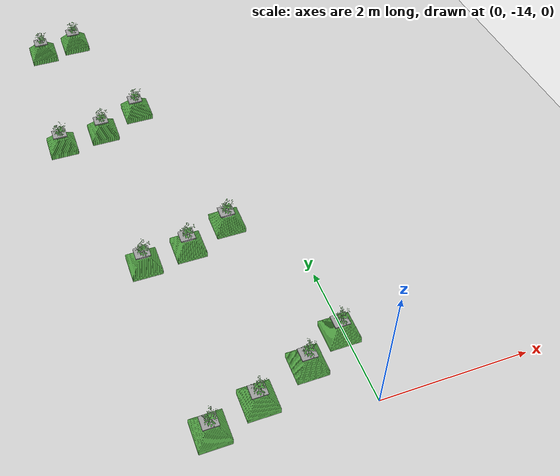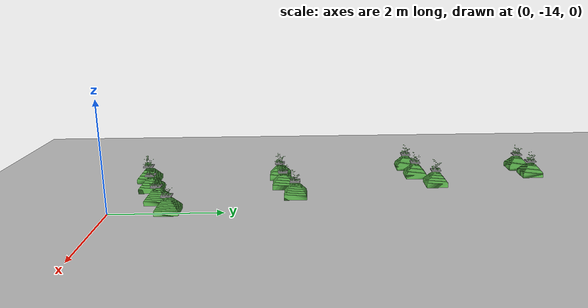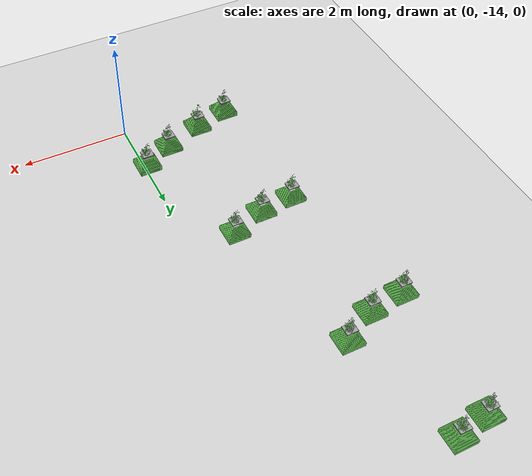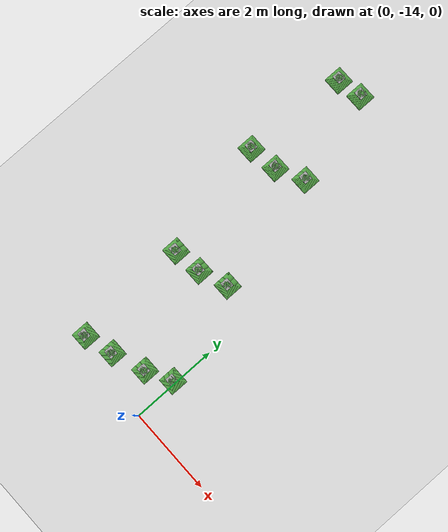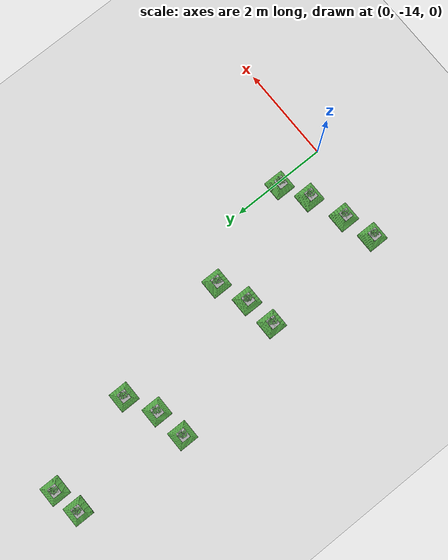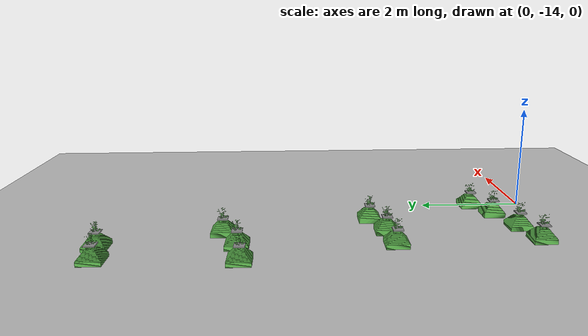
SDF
<sdf version="1.6">
 <world name="default">
  <model name="ground_plane">
   <static>1</static>
   <link name="link">
    <collision name="collision">
     <geometry><plane><normal>0 0 1</normal><size>100 100</size></plane></geometry>
     <surface><friction><ode><mu>100</mu><mu2>50</mu2></ode></friction></surface>
    </collision>
    <visual name="visual">
     <cast_shadows>0</cast_shadows>
     <geometry><plane><normal>0 0 1</normal><size>100 100</size></plane></geometry>
     <material>
      <script><uri>file://media/materials/scripts/gazebo.material</uri><name>Gazebo/Grey</name></script>
     </material>
    </visual>
   </link>
  </model>
  <model name="plant_31">
   <link name="link_0">
    <inertial>
     <mass>1</mass>
     <inertia>
      <ixx>0.0134051</ixx>
      <ixy>0</ixy>
      <ixz>0</ixz>
      <iyy>0.0134051</iyy>
      <iyz>0</iyz>
      <izz>0.0254102</izz>
     </inertia>
    </inertial>
    <gravity>0</gravity>
    <visual name="visual">
     <geometry><mesh><uri>model://square_pot/pot.stl</uri><scale>0.033 0.033 0.02</scale></mesh></geometry>
     <material>
      <lighting>1</lighting>
      <script><uri>file://media/materials/scripts/gazebo.material</uri><name>Gazebo/Grass</name></script>
      <ambient>0.3 0.3 0.3 1</ambient>
      <diffuse>0.7 0.7 0.7 1</diffuse>
      <specular>0.01 0.01 0.01 1</specular>
      <emissive>0 0 0 1</emissive>
      <shader type="vertex"><normal_map>__default__</normal_map></shader>
     </material>
    </visual>
    <collision name="collision">
     <pose>0 0 0.25 0 -0 0</pose>
     <geometry><box><size>0.4 0.4 0.4</size></box></geometry>
     <surface>
      <friction>
       <ode><mu>1</mu><mu2>1</mu2><fdir1>0 0 0</fdir1><slip1>0</slip1><slip2>0</slip2></ode>
       <torsional>
        <coefficient>1</coefficient>
        <patch_radius>0</patch_radius>
        <surface_radius>0</surface_radius>
        <use_patch_radius>1</use_patch_radius>
        <ode><slip>0</slip></ode>
       </torsional>
      </friction>
      <bounce><restitution_coefficient>0</restitution_coefficient><threshold>1e+06</threshold></bounce>
      <contact>
       <collide_without_contact>1</collide_without_contact>
       <collide_without_contact_bitmask>1</collide_without_contact_bitmask>
       <collide_bitmask>1</collide_bitmask>
       <ode>
        <soft_cfm>0</soft_cfm>
        <soft_erp>0.2</soft_erp>
        <kp>1e+13</kp>
        <kd>1</kd>
        <max_vel>0.01</max_vel>
        <min_depth>0</min_depth>
       </ode>
       <bullet>
        <split_impulse>1</split_impulse>
        <split_impulse_penetration_threshold>-0.01</split_impulse_penetration_threshold>
        <soft_cfm>0</soft_cfm>
        <soft_erp>0.2</soft_erp>
        <kp>1e+13</kp>
        <kd>1</kd>
       </bullet>
      </contact>
     </surface>
    </collision>
   </link>
   <link name="link_0_0">
    <pose>-0.011441 -0.008338 0.308474 0 -0 0</pose>
    <inertial>
     <mass>0.000736153</mass>
     <inertia>
      <ixx>2.11165e-06</ixx>
      <ixy>0</ixy>
      <ixz>0</ixz>
      <iyy>2.64382e-06</iyy>
      <iyz>0</iyz>
      <izz>4.70976e-06</izz>
     </inertia>
    </inertial>
    <visual name="visual">
     <geometry><box><size>0.206678 0.18452 0.019291</size></box></geometry>
     <material>
      <lighting>1</lighting>
      <script><uri>file://media/materials/scripts/gazebo.material</uri><name>Gazebo/Grey</name></script>
      <ambient>0.3 0.3 0.3 1</ambient>
      <diffuse>0.7 0.7 0.7 1</diffuse>
      <specular>0.01 0.01 0.01 1</specular>
      <emissive>0 0 0 1</emissive>
     </material>
    </visual>
    <collision name="collision">
     <geometry><box><size>0.206678 0.18452 0.019291</size></box></geometry>
     <surface>
      <friction>
       <ode><mu>1</mu><mu2>1</mu2><fdir1>0 0 0</fdir1><slip1>0</slip1><slip2>0</slip2></ode>
       <torsional>
        <coefficient>1</coefficient>
        <patch_radius>0</patch_radius>
        <surface_radius>0</surface_radius>
        <use_patch_radius>1</use_patch_radius>
        <ode><slip>0</slip></ode>
       </torsional>
      </friction>
      <bounce><restitution_coefficient>0</restitution_coefficient><threshold>1e+06</threshold></bounce>
      <contact>
       <collide_without_contact>0</collide_without_contact>
       <collide_without_contact_bitmask>1</collide_without_contact_bitmask>
       <collide_bitmask>1</collide_bitmask>
       <ode>
        <soft_cfm>0</soft_cfm>
        <soft_erp>0.2</soft_erp>
        <kp>1e+13</kp>
        <kd>1</kd>
        <max_vel>0.01</max_vel>
        <min_depth>0</min_depth>
       </ode>
       <bullet>
        <split_impulse>1</split_impulse>
        <split_impulse_penetration_threshold>-0.01</split_impulse_penetration_threshold>
        <soft_cfm>0</soft_cfm>
        <soft_erp>0.2</soft_erp>
        <kp>1e+13</kp>
        <kd>1</kd>
       </bullet>
      </contact>
     </surface>
    </collision>
   </link>
   <static>1</static>
   <pose>-2.54854 -6.01059 0 0 -0 0</pose>
  </model>
  <model name="plant_32">
   <link name="link_0">
    <inertial>
     <mass>1</mass>
     <inertia>
      <ixx>0.0134051</ixx>
      <ixy>0</ixy>
      <ixz>0</ixz>
      <iyy>0.0134051</iyy>
      <iyz>0</iyz>
      <izz>0.0254102</izz>
     </inertia>
    </inertial>
    <gravity>0</gravity>
    <visual name="visual">
     <geometry><mesh><uri>model://square_pot/pot.stl</uri><scale>0.033 0.033 0.02</scale></mesh></geometry>
     <material>
      <lighting>1</lighting>
      <script><uri>file://media/materials/scripts/gazebo.material</uri><name>Gazebo/Grass</name></script>
      <ambient>0.3 0.3 0.3 1</ambient>
      <diffuse>0.7 0.7 0.7 1</diffuse>
      <specular>0.01 0.01 0.01 1</specular>
      <emissive>0 0 0 1</emissive>
      <shader type="vertex"><normal_map>__default__</normal_map></shader>
     </material>
    </visual>
    <collision name="collision">
     <pose>0 0 0.25 0 -0 0</pose>
     <geometry><box><size>0.4 0.4 0.4</size></box></geometry>
     <surface>
      <friction>
       <ode><mu>1</mu><mu2>1</mu2><fdir1>0 0 0</fdir1><slip1>0</slip1><slip2>0</slip2></ode>
       <torsional>
        <coefficient>1</coefficient>
        <patch_radius>0</patch_radius>
        <surface_radius>0</surface_radius>
        <use_patch_radius>1</use_patch_radius>
        <ode><slip>0</slip></ode>
       </torsional>
      </friction>
      <bounce><restitution_coefficient>0</restitution_coefficient><threshold>1e+06</threshold></bounce>
      <contact>
       <collide_without_contact>1</collide_without_contact>
       <collide_without_contact_bitmask>1</collide_without_contact_bitmask>
       <collide_bitmask>1</collide_bitmask>
       <ode>
        <soft_cfm>0</soft_cfm>
        <soft_erp>0.2</soft_erp>
        <kp>1e+13</kp>
        <kd>1</kd>
        <max_vel>0.01</max_vel>
        <min_depth>0</min_depth>
       </ode>
       <bullet>
        <split_impulse>1</split_impulse>
        <split_impulse_penetration_threshold>-0.01</split_impulse_penetration_threshold>
        <soft_cfm>0</soft_cfm>
        <soft_erp>0.2</soft_erp>
        <kp>1e+13</kp>
        <kd>1</kd>
       </bullet>
      </contact>
     </surface>
    </collision>
   </link>
   <link name="link_0_0">
    <pose>-0.011441 -0.008338 0.308474 0 -0 0</pose>
    <inertial>
     <mass>0.000736153</mass>
     <inertia>
      <ixx>2.11165e-06</ixx>
      <ixy>0</ixy>
      <ixz>0</ixz>
      <iyy>2.64382e-06</iyy>
      <iyz>0</iyz>
      <izz>4.70976e-06</izz>
     </inertia>
    </inertial>
    <visual name="visual">
     <geometry><box><size>0.206678 0.18452 0.019291</size></box></geometry>
     <material>
      <lighting>1</lighting>
      <script><uri>file://media/materials/scripts/gazebo.material</uri><name>Gazebo/Grey</name></script>
      <ambient>0.3 0.3 0.3 1</ambient>
      <diffuse>0.7 0.7 0.7 1</diffuse>
      <specular>0.01 0.01 0.01 1</specular>
      <emissive>0 0 0 1</emissive>
     </material>
    </visual>
    <collision name="collision">
     <geometry><box><size>0.206678 0.18452 0.019291</size></box></geometry>
     <surface>
      <friction>
       <ode><mu>1</mu><mu2>1</mu2><fdir1>0 0 0</fdir1><slip1>0</slip1><slip2>0</slip2></ode>
       <torsional>
        <coefficient>1</coefficient>
        <patch_radius>0</patch_radius>
        <surface_radius>0</surface_radius>
        <use_patch_radius>1</use_patch_radius>
        <ode><slip>0</slip></ode>
       </torsional>
      </friction>
      <bounce><restitution_coefficient>0</restitution_coefficient><threshold>1e+06</threshold></bounce>
      <contact>
       <collide_without_contact>0</collide_without_contact>
       <collide_without_contact_bitmask>1</collide_without_contact_bitmask>
       <collide_bitmask>1</collide_bitmask>
       <ode>
        <soft_cfm>0</soft_cfm>
        <soft_erp>0.2</soft_erp>
        <kp>1e+13</kp>
        <kd>1</kd>
        <max_vel>0.01</max_vel>
        <min_depth>0</min_depth>
       </ode>
       <bullet>
        <split_impulse>1</split_impulse>
        <split_impulse_penetration_threshold>-0.01</split_impulse_penetration_threshold>
        <soft_cfm>0</soft_cfm>
        <soft_erp>0.2</soft_erp>
        <kp>1e+13</kp>
        <kd>1</kd>
       </bullet>
      </contact>
     </surface>
    </collision>
   </link>
   <static>1</static>
   <pose>-1.97889 -5.89957 0 0 -0 0</pose>
  </model>
  <model name="plant_35">
   <link name="link_0">
    <inertial>
     <mass>1</mass>
     <inertia>
      <ixx>0.0134051</ixx>
      <ixy>0</ixy>
      <ixz>0</ixz>
      <iyy>0.0134051</iyy>
      <iyz>0</iyz>
      <izz>0.0254102</izz>
     </inertia>
    </inertial>
    <gravity>0</gravity>
    <visual name="visual">
     <geometry><mesh><uri>model://square_pot/pot.stl</uri><scale>0.033 0.033 0.02</scale></mesh></geometry>
     <material>
      <lighting>1</lighting>
      <script><uri>file://media/materials/scripts/gazebo.material</uri><name>Gazebo/Grass</name></script>
      <ambient>0.3 0.3 0.3 1</ambient>
      <diffuse>0.7 0.7 0.7 1</diffuse>
      <specular>0.01 0.01 0.01 1</specular>
      <emissive>0 0 0 1</emissive>
      <shader type="vertex"><normal_map>__default__</normal_map></shader>
     </material>
    </visual>
    <collision name="collision">
     <pose>0 0 0.25 0 -0 0</pose>
     <geometry><box><size>0.4 0.4 0.4</size></box></geometry>
     <surface>
      <friction>
       <ode><mu>1</mu><mu2>1</mu2><fdir1>0 0 0</fdir1><slip1>0</slip1><slip2>0</slip2></ode>
       <torsional>
        <coefficient>1</coefficient>
        <patch_radius>0</patch_radius>
        <surface_radius>0</surface_radius>
        <use_patch_radius>1</use_patch_radius>
        <ode><slip>0</slip></ode>
       </torsional>
      </friction>
      <bounce><restitution_coefficient>0</restitution_coefficient><threshold>1e+06</threshold></bounce>
      <contact>
       <collide_without_contact>1</collide_without_contact>
       <collide_without_contact_bitmask>1</collide_without_contact_bitmask>
       <collide_bitmask>1</collide_bitmask>
       <ode>
        <soft_cfm>0</soft_cfm>
        <soft_erp>0.2</soft_erp>
        <kp>1e+13</kp>
        <kd>1</kd>
        <max_vel>0.01</max_vel>
        <min_depth>0</min_depth>
       </ode>
       <bullet>
        <split_impulse>1</split_impulse>
        <split_impulse_penetration_threshold>-0.01</split_impulse_penetration_threshold>
        <soft_cfm>0</soft_cfm>
        <soft_erp>0.2</soft_erp>
        <kp>1e+13</kp>
        <kd>1</kd>
       </bullet>
      </contact>
     </surface>
    </collision>
   </link>
   <link name="link_0_0">
    <pose>-0.011441 -0.008338 0.308474 0 -0 0</pose>
    <inertial>
     <mass>0.000736153</mass>
     <inertia>
      <ixx>2.11165e-06</ixx>
      <ixy>0</ixy>
      <ixz>0</ixz>
      <iyy>2.64382e-06</iyy>
      <iyz>0</iyz>
      <izz>4.70976e-06</izz>
     </inertia>
    </inertial>
    <visual name="visual">
     <geometry><box><size>0.206678 0.18452 0.019291</size></box></geometry>
     <material>
      <lighting>1</lighting>
      <script><uri>file://media/materials/scripts/gazebo.material</uri><name>Gazebo/Grey</name></script>
      <ambient>0.3 0.3 0.3 1</ambient>
      <diffuse>0.7 0.7 0.7 1</diffuse>
      <specular>0.01 0.01 0.01 1</specular>
      <emissive>0 0 0 1</emissive>
     </material>
    </visual>
    <collision name="collision">
     <geometry><box><size>0.206678 0.18452 0.019291</size></box></geometry>
     <surface>
      <friction>
       <ode><mu>1</mu><mu2>1</mu2><fdir1>0 0 0</fdir1><slip1>0</slip1><slip2>0</slip2></ode>
       <torsional>
        <coefficient>1</coefficient>
        <patch_radius>0</patch_radius>
        <surface_radius>0</surface_radius>
        <use_patch_radius>1</use_patch_radius>
        <ode><slip>0</slip></ode>
       </torsional>
      </friction>
      <bounce><restitution_coefficient>0</restitution_coefficient><threshold>1e+06</threshold></bounce>
      <contact>
       <collide_without_contact>0</collide_without_contact>
       <collide_without_contact_bitmask>1</collide_without_contact_bitmask>
       <collide_bitmask>1</collide_bitmask>
       <ode>
        <soft_cfm>0</soft_cfm>
        <soft_erp>0.2</soft_erp>
        <kp>1e+13</kp>
        <kd>1</kd>
        <max_vel>0.01</max_vel>
        <min_depth>0</min_depth>
       </ode>
       <bullet>
        <split_impulse>1</split_impulse>
        <split_impulse_penetration_threshold>-0.01</split_impulse_penetration_threshold>
        <soft_cfm>0</soft_cfm>
        <soft_erp>0.2</soft_erp>
        <kp>1e+13</kp>
        <kd>1</kd>
       </bullet>
      </contact>
     </surface>
    </collision>
   </link>
   <static>1</static>
   <pose>-2.68524 -8.4179 0 0 -0 0</pose>
  </model>
  <model name="plant_36">
   <link name="link_0">
    <inertial>
     <mass>1</mass>
     <inertia>
      <ixx>0.0134051</ixx>
      <ixy>0</ixy>
      <ixz>0</ixz>
      <iyy>0.0134051</iyy>
      <iyz>0</iyz>
      <izz>0.0254102</izz>
     </inertia>
    </inertial>
    <gravity>0</gravity>
    <visual name="visual">
     <geometry><mesh><uri>model://square_pot/pot.stl</uri><scale>0.033 0.033 0.02</scale></mesh></geometry>
     <material>
      <lighting>1</lighting>
      <script><uri>file://media/materials/scripts/gazebo.material</uri><name>Gazebo/Grass</name></script>
      <ambient>0.3 0.3 0.3 1</ambient>
      <diffuse>0.7 0.7 0.7 1</diffuse>
      <specular>0.01 0.01 0.01 1</specular>
      <emissive>0 0 0 1</emissive>
      <shader type="vertex"><normal_map>__default__</normal_map></shader>
     </material>
    </visual>
    <collision name="collision">
     <pose>0 0 0.25 0 -0 0</pose>
     <geometry><box><size>0.4 0.4 0.4</size></box></geometry>
     <surface>
      <friction>
       <ode><mu>1</mu><mu2>1</mu2><fdir1>0 0 0</fdir1><slip1>0</slip1><slip2>0</slip2></ode>
       <torsional>
        <coefficient>1</coefficient>
        <patch_radius>0</patch_radius>
        <surface_radius>0</surface_radius>
        <use_patch_radius>1</use_patch_radius>
        <ode><slip>0</slip></ode>
       </torsional>
      </friction>
      <bounce><restitution_coefficient>0</restitution_coefficient><threshold>1e+06</threshold></bounce>
      <contact>
       <collide_without_contact>1</collide_without_contact>
       <collide_without_contact_bitmask>1</collide_without_contact_bitmask>
       <collide_bitmask>1</collide_bitmask>
       <ode>
        <soft_cfm>0</soft_cfm>
        <soft_erp>0.2</soft_erp>
        <kp>1e+13</kp>
        <kd>1</kd>
        <max_vel>0.01</max_vel>
        <min_depth>0</min_depth>
       </ode>
       <bullet>
        <split_impulse>1</split_impulse>
        <split_impulse_penetration_threshold>-0.01</split_impulse_penetration_threshold>
        <soft_cfm>0</soft_cfm>
        <soft_erp>0.2</soft_erp>
        <kp>1e+13</kp>
        <kd>1</kd>
       </bullet>
      </contact>
     </surface>
    </collision>
   </link>
   <link name="link_0_0">
    <pose>-0.011441 -0.008338 0.308474 0 -0 0</pose>
    <inertial>
     <mass>0.000736153</mass>
     <inertia>
      <ixx>2.11165e-06</ixx>
      <ixy>0</ixy>
      <ixz>0</ixz>
      <iyy>2.64382e-06</iyy>
      <iyz>0</iyz>
      <izz>4.70976e-06</izz>
     </inertia>
    </inertial>
    <visual name="visual">
     <geometry><box><size>0.206678 0.18452 0.019291</size></box></geometry>
     <material>
      <lighting>1</lighting>
      <script><uri>file://media/materials/scripts/gazebo.material</uri><name>Gazebo/Grey</name></script>
      <ambient>0.3 0.3 0.3 1</ambient>
      <diffuse>0.7 0.7 0.7 1</diffuse>
      <specular>0.01 0.01 0.01 1</specular>
      <emissive>0 0 0 1</emissive>
     </material>
    </visual>
    <collision name="collision">
     <geometry><box><size>0.206678 0.18452 0.019291</size></box></geometry>
     <surface>
      <friction>
       <ode><mu>1</mu><mu2>1</mu2><fdir1>0 0 0</fdir1><slip1>0</slip1><slip2>0</slip2></ode>
       <torsional>
        <coefficient>1</coefficient>
        <patch_radius>0</patch_radius>
        <surface_radius>0</surface_radius>
        <use_patch_radius>1</use_patch_radius>
        <ode><slip>0</slip></ode>
       </torsional>
      </friction>
      <bounce><restitution_coefficient>0</restitution_coefficient><threshold>1e+06</threshold></bounce>
      <contact>
       <collide_without_contact>0</collide_without_contact>
       <collide_without_contact_bitmask>1</collide_without_contact_bitmask>
       <collide_bitmask>1</collide_bitmask>
       <ode>
        <soft_cfm>0</soft_cfm>
        <soft_erp>0.2</soft_erp>
        <kp>1e+13</kp>
        <kd>1</kd>
        <max_vel>0.01</max_vel>
        <min_depth>0</min_depth>
       </ode>
       <bullet>
        <split_impulse>1</split_impulse>
        <split_impulse_penetration_threshold>-0.01</split_impulse_penetration_threshold>
        <soft_cfm>0</soft_cfm>
        <soft_erp>0.2</soft_erp>
        <kp>1e+13</kp>
        <kd>1</kd>
       </bullet>
      </contact>
     </surface>
    </collision>
   </link>
   <static>1</static>
   <pose>-2.02553 -8.31826 0 0 -0 0</pose>
  </model>
  <model name="plant_37">
   <link name="link_0">
    <inertial>
     <mass>1</mass>
     <inertia>
      <ixx>0.0134051</ixx>
      <ixy>0</ixy>
      <ixz>0</ixz>
      <iyy>0.0134051</iyy>
      <iyz>0</iyz>
      <izz>0.0254102</izz>
     </inertia>
    </inertial>
    <gravity>0</gravity>
    <visual name="visual">
     <geometry><mesh><uri>model://square_pot/pot.stl</uri><scale>0.033 0.033 0.02</scale></mesh></geometry>
     <material>
      <lighting>1</lighting>
      <script><uri>file://media/materials/scripts/gazebo.material</uri><name>Gazebo/Grass</name></script>
      <ambient>0.3 0.3 0.3 1</ambient>
      <diffuse>0.7 0.7 0.7 1</diffuse>
      <specular>0.01 0.01 0.01 1</specular>
      <emissive>0 0 0 1</emissive>
      <shader type="vertex"><normal_map>__default__</normal_map></shader>
     </material>
    </visual>
    <collision name="collision">
     <pose>0 0 0.25 0 -0 0</pose>
     <geometry><box><size>0.4 0.4 0.4</size></box></geometry>
     <surface>
      <friction>
       <ode><mu>1</mu><mu2>1</mu2><fdir1>0 0 0</fdir1><slip1>0</slip1><slip2>0</slip2></ode>
       <torsional>
        <coefficient>1</coefficient>
        <patch_radius>0</patch_radius>
        <surface_radius>0</surface_radius>
        <use_patch_radius>1</use_patch_radius>
        <ode><slip>0</slip></ode>
       </torsional>
      </friction>
      <bounce><restitution_coefficient>0</restitution_coefficient><threshold>1e+06</threshold></bounce>
      <contact>
       <collide_without_contact>1</collide_without_contact>
       <collide_without_contact_bitmask>1</collide_without_contact_bitmask>
       <collide_bitmask>1</collide_bitmask>
       <ode>
        <soft_cfm>0</soft_cfm>
        <soft_erp>0.2</soft_erp>
        <kp>1e+13</kp>
        <kd>1</kd>
        <max_vel>0.01</max_vel>
        <min_depth>0</min_depth>
       </ode>
       <bullet>
        <split_impulse>1</split_impulse>
        <split_impulse_penetration_threshold>-0.01</split_impulse_penetration_threshold>
        <soft_cfm>0</soft_cfm>
        <soft_erp>0.2</soft_erp>
        <kp>1e+13</kp>
        <kd>1</kd>
       </bullet>
      </contact>
     </surface>
    </collision>
   </link>
   <link name="link_0_0">
    <pose>-0.011441 -0.008338 0.308474 0 -0 0</pose>
    <inertial>
     <mass>0.000736153</mass>
     <inertia>
      <ixx>2.11165e-06</ixx>
      <ixy>0</ixy>
      <ixz>0</ixz>
      <iyy>2.64382e-06</iyy>
      <iyz>0</iyz>
      <izz>4.70976e-06</izz>
     </inertia>
    </inertial>
    <visual name="visual">
     <geometry><box><size>0.206678 0.18452 0.019291</size></box></geometry>
     <material>
      <lighting>1</lighting>
      <script><uri>file://media/materials/scripts/gazebo.material</uri><name>Gazebo/Grey</name></script>
      <ambient>0.3 0.3 0.3 1</ambient>
      <diffuse>0.7 0.7 0.7 1</diffuse>
      <specular>0.01 0.01 0.01 1</specular>
      <emissive>0 0 0 1</emissive>
     </material>
    </visual>
    <collision name="collision">
     <geometry><box><size>0.206678 0.18452 0.019291</size></box></geometry>
     <surface>
      <friction>
       <ode><mu>1</mu><mu2>1</mu2><fdir1>0 0 0</fdir1><slip1>0</slip1><slip2>0</slip2></ode>
       <torsional>
        <coefficient>1</coefficient>
        <patch_radius>0</patch_radius>
        <surface_radius>0</surface_radius>
        <use_patch_radius>1</use_patch_radius>
        <ode><slip>0</slip></ode>
       </torsional>
      </friction>
      <bounce><restitution_coefficient>0</restitution_coefficient><threshold>1e+06</threshold></bounce>
      <contact>
       <collide_without_contact>0</collide_without_contact>
       <collide_without_contact_bitmask>1</collide_without_contact_bitmask>
       <collide_bitmask>1</collide_bitmask>
       <ode>
        <soft_cfm>0</soft_cfm>
        <soft_erp>0.2</soft_erp>
        <kp>1e+13</kp>
        <kd>1</kd>
        <max_vel>0.01</max_vel>
        <min_depth>0</min_depth>
       </ode>
       <bullet>
        <split_impulse>1</split_impulse>
        <split_impulse_penetration_threshold>-0.01</split_impulse_penetration_threshold>
        <soft_cfm>0</soft_cfm>
        <soft_erp>0.2</soft_erp>
        <kp>1e+13</kp>
        <kd>1</kd>
       </bullet>
      </contact>
     </surface>
    </collision>
   </link>
   <static>1</static>
   <pose>-1.40881 -8.00581 0 0 -0 0</pose>
  </model>
  <model name="plant_43">
   <link name="link_0">
    <inertial>
     <mass>1</mass>
     <inertia>
      <ixx>0.0134051</ixx>
      <ixy>0</ixy>
      <ixz>0</ixz>
      <iyy>0.0134051</iyy>
      <iyz>0</iyz>
      <izz>0.0254102</izz>
     </inertia>
    </inertial>
    <gravity>0</gravity>
    <visual name="visual">
     <geometry><mesh><uri>model://square_pot/pot.stl</uri><scale>0.033 0.033 0.02</scale></mesh></geometry>
     <material>
      <lighting>1</lighting>
      <script><uri>file://media/materials/scripts/gazebo.material</uri><name>Gazebo/Grass</name></script>
      <ambient>0.3 0.3 0.3 1</ambient>
      <diffuse>0.7 0.7 0.7 1</diffuse>
      <specular>0.01 0.01 0.01 1</specular>
      <emissive>0 0 0 1</emissive>
      <shader type="vertex"><normal_map>__default__</normal_map></shader>
     </material>
    </visual>
    <collision name="collision">
     <pose>0 0 0.25 0 -0 0</pose>
     <geometry><box><size>0.4 0.4 0.4</size></box></geometry>
     <surface>
      <friction>
       <ode><mu>1</mu><mu2>1</mu2><fdir1>0 0 0</fdir1><slip1>0</slip1><slip2>0</slip2></ode>
       <torsional>
        <coefficient>1</coefficient>
        <patch_radius>0</patch_radius>
        <surface_radius>0</surface_radius>
        <use_patch_radius>1</use_patch_radius>
        <ode><slip>0</slip></ode>
       </torsional>
      </friction>
      <bounce><restitution_coefficient>0</restitution_coefficient><threshold>1e+06</threshold></bounce>
      <contact>
       <collide_without_contact>1</collide_without_contact>
       <collide_without_contact_bitmask>1</collide_without_contact_bitmask>
       <collide_bitmask>1</collide_bitmask>
       <ode>
        <soft_cfm>0</soft_cfm>
        <soft_erp>0.2</soft_erp>
        <kp>1e+13</kp>
        <kd>1</kd>
        <max_vel>0.01</max_vel>
        <min_depth>0</min_depth>
       </ode>
       <bullet>
        <split_impulse>1</split_impulse>
        <split_impulse_penetration_threshold>-0.01</split_impulse_penetration_threshold>
        <soft_cfm>0</soft_cfm>
        <soft_erp>0.2</soft_erp>
        <kp>1e+13</kp>
        <kd>1</kd>
       </bullet>
      </contact>
     </surface>
    </collision>
   </link>
   <link name="link_0_0">
    <pose>-0.011441 -0.008338 0.308474 0 -0 0</pose>
    <inertial>
     <mass>0.000736153</mass>
     <inertia>
      <ixx>2.11165e-06</ixx>
      <ixy>0</ixy>
      <ixz>0</ixz>
      <iyy>2.64382e-06</iyy>
      <iyz>0</iyz>
      <izz>4.70976e-06</izz>
     </inertia>
    </inertial>
    <visual name="visual">
     <geometry><box><size>0.206678 0.18452 0.019291</size></box></geometry>
     <material>
      <lighting>1</lighting>
      <script><uri>file://media/materials/scripts/gazebo.material</uri><name>Gazebo/Grey</name></script>
      <ambient>0.3 0.3 0.3 1</ambient>
      <diffuse>0.7 0.7 0.7 1</diffuse>
      <specular>0.01 0.01 0.01 1</specular>
      <emissive>0 0 0 1</emissive>
     </material>
    </visual>
    <collision name="collision">
     <geometry><box><size>0.206678 0.18452 0.019291</size></box></geometry>
     <surface>
      <friction>
       <ode><mu>1</mu><mu2>1</mu2><fdir1>0 0 0</fdir1><slip1>0</slip1><slip2>0</slip2></ode>
       <torsional>
        <coefficient>1</coefficient>
        <patch_radius>0</patch_radius>
        <surface_radius>0</surface_radius>
        <use_patch_radius>1</use_patch_radius>
        <ode><slip>0</slip></ode>
       </torsional>
      </friction>
      <bounce><restitution_coefficient>0</restitution_coefficient><threshold>1e+06</threshold></bounce>
      <contact>
       <collide_without_contact>0</collide_without_contact>
       <collide_without_contact_bitmask>1</collide_without_contact_bitmask>
       <collide_bitmask>1</collide_bitmask>
       <ode>
        <soft_cfm>0</soft_cfm>
        <soft_erp>0.2</soft_erp>
        <kp>1e+13</kp>
        <kd>1</kd>
        <max_vel>0.01</max_vel>
        <min_depth>0</min_depth>
       </ode>
       <bullet>
        <split_impulse>1</split_impulse>
        <split_impulse_penetration_threshold>-0.01</split_impulse_penetration_threshold>
        <soft_cfm>0</soft_cfm>
        <soft_erp>0.2</soft_erp>
        <kp>1e+13</kp>
        <kd>1</kd>
       </bullet>
      </contact>
     </surface>
    </collision>
   </link>
   <static>1</static>
   <pose>-2.00876 -13.7234 0 0 -0 0</pose>
  </model>
  <model name="plant_44">
   <link name="link_0">
    <inertial>
     <mass>1</mass>
     <inertia>
      <ixx>0.0134051</ixx>
      <ixy>0</ixy>
      <ixz>0</ixz>
      <iyy>0.0134051</iyy>
      <iyz>0</iyz>
      <izz>0.0254102</izz>
     </inertia>
    </inertial>
    <gravity>0</gravity>
    <visual name="visual">
     <geometry><mesh><uri>model://square_pot/pot.stl</uri><scale>0.033 0.033 0.02</scale></mesh></geometry>
     <material>
      <lighting>1</lighting>
      <script><uri>file://media/materials/scripts/gazebo.material</uri><name>Gazebo/Grass</name></script>
      <ambient>0.3 0.3 0.3 1</ambient>
      <diffuse>0.7 0.7 0.7 1</diffuse>
      <specular>0.01 0.01 0.01 1</specular>
      <emissive>0 0 0 1</emissive>
      <shader type="vertex"><normal_map>__default__</normal_map></shader>
     </material>
    </visual>
    <collision name="collision">
     <pose>0 0 0.25 0 -0 0</pose>
     <geometry><box><size>0.4 0.4 0.4</size></box></geometry>
     <surface>
      <friction>
       <ode><mu>1</mu><mu2>1</mu2><fdir1>0 0 0</fdir1><slip1>0</slip1><slip2>0</slip2></ode>
       <torsional>
        <coefficient>1</coefficient>
        <patch_radius>0</patch_radius>
        <surface_radius>0</surface_radius>
        <use_patch_radius>1</use_patch_radius>
        <ode><slip>0</slip></ode>
       </torsional>
      </friction>
      <bounce><restitution_coefficient>0</restitution_coefficient><threshold>1e+06</threshold></bounce>
      <contact>
       <collide_without_contact>1</collide_without_contact>
       <collide_without_contact_bitmask>1</collide_without_contact_bitmask>
       <collide_bitmask>1</collide_bitmask>
       <ode>
        <soft_cfm>0</soft_cfm>
        <soft_erp>0.2</soft_erp>
        <kp>1e+13</kp>
        <kd>1</kd>
        <max_vel>0.01</max_vel>
        <min_depth>0</min_depth>
       </ode>
       <bullet>
        <split_impulse>1</split_impulse>
        <split_impulse_penetration_threshold>-0.01</split_impulse_penetration_threshold>
        <soft_cfm>0</soft_cfm>
        <soft_erp>0.2</soft_erp>
        <kp>1e+13</kp>
        <kd>1</kd>
       </bullet>
      </contact>
     </surface>
    </collision>
   </link>
   <link name="link_0_0">
    <pose>-0.011441 -0.008338 0.308474 0 -0 0</pose>
    <inertial>
     <mass>0.000736153</mass>
     <inertia>
      <ixx>2.11165e-06</ixx>
      <ixy>0</ixy>
      <ixz>0</ixz>
      <iyy>2.64382e-06</iyy>
      <iyz>0</iyz>
      <izz>4.70976e-06</izz>
     </inertia>
    </inertial>
    <visual name="visual">
     <geometry><box><size>0.206678 0.18452 0.019291</size></box></geometry>
     <material>
      <lighting>1</lighting>
      <script><uri>file://media/materials/scripts/gazebo.material</uri><name>Gazebo/Grey</name></script>
      <ambient>0.3 0.3 0.3 1</ambient>
      <diffuse>0.7 0.7 0.7 1</diffuse>
      <specular>0.01 0.01 0.01 1</specular>
      <emissive>0 0 0 1</emissive>
     </material>
    </visual>
    <collision name="collision">
     <geometry><box><size>0.206678 0.18452 0.019291</size></box></geometry>
     <surface>
      <friction>
       <ode><mu>1</mu><mu2>1</mu2><fdir1>0 0 0</fdir1><slip1>0</slip1><slip2>0</slip2></ode>
       <torsional>
        <coefficient>1</coefficient>
        <patch_radius>0</patch_radius>
        <surface_radius>0</surface_radius>
        <use_patch_radius>1</use_patch_radius>
        <ode><slip>0</slip></ode>
       </torsional>
      </friction>
      <bounce><restitution_coefficient>0</restitution_coefficient><threshold>1e+06</threshold></bounce>
      <contact>
       <collide_without_contact>0</collide_without_contact>
       <collide_without_contact_bitmask>1</collide_without_contact_bitmask>
       <collide_bitmask>1</collide_bitmask>
       <ode>
        <soft_cfm>0</soft_cfm>
        <soft_erp>0.2</soft_erp>
        <kp>1e+13</kp>
        <kd>1</kd>
        <max_vel>0.01</max_vel>
        <min_depth>0</min_depth>
       </ode>
       <bullet>
        <split_impulse>1</split_impulse>
        <split_impulse_penetration_threshold>-0.01</split_impulse_penetration_threshold>
        <soft_cfm>0</soft_cfm>
        <soft_erp>0.2</soft_erp>
        <kp>1e+13</kp>
        <kd>1</kd>
       </bullet>
      </contact>
     </surface>
    </collision>
   </link>
   <static>1</static>
   <pose>-1.35663 -13.5413 0 0 -0 0</pose>
  </model>
  <model name="plant_45">
   <link name="link_0">
    <inertial>
     <mass>1</mass>
     <inertia>
      <ixx>0.0134051</ixx>
      <ixy>0</ixy>
      <ixz>0</ixz>
      <iyy>0.0134051</iyy>
      <iyz>0</iyz>
      <izz>0.0254102</izz>
     </inertia>
    </inertial>
    <gravity>0</gravity>
    <visual name="visual">
     <geometry><mesh><uri>model://square_pot/pot.stl</uri><scale>0.033 0.033 0.02</scale></mesh></geometry>
     <material>
      <lighting>1</lighting>
      <script><uri>file://media/materials/scripts/gazebo.material</uri><name>Gazebo/Grass</name></script>
      <ambient>0.3 0.3 0.3 1</ambient>
      <diffuse>0.7 0.7 0.7 1</diffuse>
      <specular>0.01 0.01 0.01 1</specular>
      <emissive>0 0 0 1</emissive>
      <shader type="vertex"><normal_map>__default__</normal_map></shader>
     </material>
    </visual>
    <collision name="collision">
     <pose>0 0 0.25 0 -0 0</pose>
     <geometry><box><size>0.4 0.4 0.4</size></box></geometry>
     <surface>
      <friction>
       <ode><mu>1</mu><mu2>1</mu2><fdir1>0 0 0</fdir1><slip1>0</slip1><slip2>0</slip2></ode>
       <torsional>
        <coefficient>1</coefficient>
        <patch_radius>0</patch_radius>
        <surface_radius>0</surface_radius>
        <use_patch_radius>1</use_patch_radius>
        <ode><slip>0</slip></ode>
       </torsional>
      </friction>
      <bounce><restitution_coefficient>0</restitution_coefficient><threshold>1e+06</threshold></bounce>
      <contact>
       <collide_without_contact>1</collide_without_contact>
       <collide_without_contact_bitmask>1</collide_without_contact_bitmask>
       <collide_bitmask>1</collide_bitmask>
       <ode>
        <soft_cfm>0</soft_cfm>
        <soft_erp>0.2</soft_erp>
        <kp>1e+13</kp>
        <kd>1</kd>
        <max_vel>0.01</max_vel>
        <min_depth>0</min_depth>
       </ode>
       <bullet>
        <split_impulse>1</split_impulse>
        <split_impulse_penetration_threshold>-0.01</split_impulse_penetration_threshold>
        <soft_cfm>0</soft_cfm>
        <soft_erp>0.2</soft_erp>
        <kp>1e+13</kp>
        <kd>1</kd>
       </bullet>
      </contact>
     </surface>
    </collision>
   </link>
   <link name="link_0_0">
    <pose>-0.011441 -0.008338 0.308474 0 -0 0</pose>
    <inertial>
     <mass>0.000736153</mass>
     <inertia>
      <ixx>2.11165e-06</ixx>
      <ixy>0</ixy>
      <ixz>0</ixz>
      <iyy>2.64382e-06</iyy>
      <iyz>0</iyz>
      <izz>4.70976e-06</izz>
     </inertia>
    </inertial>
    <visual name="visual">
     <geometry><box><size>0.206678 0.18452 0.019291</size></box></geometry>
     <material>
      <lighting>1</lighting>
      <script><uri>file://media/materials/scripts/gazebo.material</uri><name>Gazebo/Grey</name></script>
      <ambient>0.3 0.3 0.3 1</ambient>
      <diffuse>0.7 0.7 0.7 1</diffuse>
      <specular>0.01 0.01 0.01 1</specular>
      <emissive>0 0 0 1</emissive>
     </material>
    </visual>
    <collision name="collision">
     <geometry><box><size>0.206678 0.18452 0.019291</size></box></geometry>
     <surface>
      <friction>
       <ode><mu>1</mu><mu2>1</mu2><fdir1>0 0 0</fdir1><slip1>0</slip1><slip2>0</slip2></ode>
       <torsional>
        <coefficient>1</coefficient>
        <patch_radius>0</patch_radius>
        <surface_radius>0</surface_radius>
        <use_patch_radius>1</use_patch_radius>
        <ode><slip>0</slip></ode>
       </torsional>
      </friction>
      <bounce><restitution_coefficient>0</restitution_coefficient><threshold>1e+06</threshold></bounce>
      <contact>
       <collide_without_contact>0</collide_without_contact>
       <collide_without_contact_bitmask>1</collide_without_contact_bitmask>
       <collide_bitmask>1</collide_bitmask>
       <ode>
        <soft_cfm>0</soft_cfm>
        <soft_erp>0.2</soft_erp>
        <kp>1e+13</kp>
        <kd>1</kd>
        <max_vel>0.01</max_vel>
        <min_depth>0</min_depth>
       </ode>
       <bullet>
        <split_impulse>1</split_impulse>
        <split_impulse_penetration_threshold>-0.01</split_impulse_penetration_threshold>
        <soft_cfm>0</soft_cfm>
        <soft_erp>0.2</soft_erp>
        <kp>1e+13</kp>
        <kd>1</kd>
       </bullet>
      </contact>
     </surface>
    </collision>
   </link>
   <static>1</static>
   <pose>-0.623547 -13.2706 0 0 -0 0</pose>
  </model>
  <model name="plant_46">
   <link name="link_0">
    <inertial>
     <mass>1</mass>
     <inertia>
      <ixx>0.0134051</ixx>
      <ixy>0</ixy>
      <ixz>0</ixz>
      <iyy>0.0134051</iyy>
      <iyz>0</iyz>
      <izz>0.0254102</izz>
     </inertia>
    </inertial>
    <gravity>0</gravity>
    <visual name="visual">
     <geometry><mesh><uri>model://square_pot/pot.stl</uri><scale>0.033 0.033 0.02</scale></mesh></geometry>
     <material>
      <lighting>1</lighting>
      <script><uri>file://media/materials/scripts/gazebo.material</uri><name>Gazebo/Grass</name></script>
      <ambient>0.3 0.3 0.3 1</ambient>
      <diffuse>0.7 0.7 0.7 1</diffuse>
      <specular>0.01 0.01 0.01 1</specular>
      <emissive>0 0 0 1</emissive>
      <shader type="vertex"><normal_map>__default__</normal_map></shader>
     </material>
    </visual>
    <collision name="collision">
     <pose>0 0 0.25 0 -0 0</pose>
     <geometry><box><size>0.4 0.4 0.4</size></box></geometry>
     <surface>
      <friction>
       <ode><mu>1</mu><mu2>1</mu2><fdir1>0 0 0</fdir1><slip1>0</slip1><slip2>0</slip2></ode>
       <torsional>
        <coefficient>1</coefficient>
        <patch_radius>0</patch_radius>
        <surface_radius>0</surface_radius>
        <use_patch_radius>1</use_patch_radius>
        <ode><slip>0</slip></ode>
       </torsional>
      </friction>
      <bounce><restitution_coefficient>0</restitution_coefficient><threshold>1e+06</threshold></bounce>
      <contact>
       <collide_without_contact>1</collide_without_contact>
       <collide_without_contact_bitmask>1</collide_without_contact_bitmask>
       <collide_bitmask>1</collide_bitmask>
       <ode>
        <soft_cfm>0</soft_cfm>
        <soft_erp>0.2</soft_erp>
        <kp>1e+13</kp>
        <kd>1</kd>
        <max_vel>0.01</max_vel>
        <min_depth>0</min_depth>
       </ode>
       <bullet>
        <split_impulse>1</split_impulse>
        <split_impulse_penetration_threshold>-0.01</split_impulse_penetration_threshold>
        <soft_cfm>0</soft_cfm>
        <soft_erp>0.2</soft_erp>
        <kp>1e+13</kp>
        <kd>1</kd>
       </bullet>
      </contact>
     </surface>
    </collision>
   </link>
   <link name="link_0_0">
    <pose>-0.011441 -0.008338 0.308474 0 -0 0</pose>
    <inertial>
     <mass>0.000736153</mass>
     <inertia>
      <ixx>2.11165e-06</ixx>
      <ixy>0</ixy>
      <ixz>0</ixz>
      <iyy>2.64382e-06</iyy>
      <iyz>0</iyz>
      <izz>4.70976e-06</izz>
     </inertia>
    </inertial>
    <visual name="visual">
     <geometry><box><size>0.206678 0.18452 0.019291</size></box></geometry>
     <material>
      <lighting>1</lighting>
      <script><uri>file://media/materials/scripts/gazebo.material</uri><name>Gazebo/Grey</name></script>
      <ambient>0.3 0.3 0.3 1</ambient>
      <diffuse>0.7 0.7 0.7 1</diffuse>
      <specular>0.01 0.01 0.01 1</specular>
      <emissive>0 0 0 1</emissive>
     </material>
    </visual>
    <collision name="collision">
     <geometry><box><size>0.206678 0.18452 0.019291</size></box></geometry>
     <surface>
      <friction>
       <ode><mu>1</mu><mu2>1</mu2><fdir1>0 0 0</fdir1><slip1>0</slip1><slip2>0</slip2></ode>
       <torsional>
        <coefficient>1</coefficient>
        <patch_radius>0</patch_radius>
        <surface_radius>0</surface_radius>
        <use_patch_radius>1</use_patch_radius>
        <ode><slip>0</slip></ode>
       </torsional>
      </friction>
      <bounce><restitution_coefficient>0</restitution_coefficient><threshold>1e+06</threshold></bounce>
      <contact>
       <collide_without_contact>0</collide_without_contact>
       <collide_without_contact_bitmask>1</collide_without_contact_bitmask>
       <collide_bitmask>1</collide_bitmask>
       <ode>
        <soft_cfm>0</soft_cfm>
        <soft_erp>0.2</soft_erp>
        <kp>1e+13</kp>
        <kd>1</kd>
        <max_vel>0.01</max_vel>
        <min_depth>0</min_depth>
       </ode>
       <bullet>
        <split_impulse>1</split_impulse>
        <split_impulse_penetration_threshold>-0.01</split_impulse_penetration_threshold>
        <soft_cfm>0</soft_cfm>
        <soft_erp>0.2</soft_erp>
        <kp>1e+13</kp>
        <kd>1</kd>
       </bullet>
      </contact>
     </surface>
    </collision>
   </link>
   <static>1</static>
   <pose>-0.065263 -12.9717 0 0 -0 0</pose>
  </model>
  <model name="plant_51">
   <link name="link_0">
    <inertial>
     <mass>1</mass>
     <inertia>
      <ixx>0.0134051</ixx>
      <ixy>0</ixy>
      <ixz>0</ixz>
      <iyy>0.0134051</iyy>
      <iyz>0</iyz>
      <izz>0.0254102</izz>
     </inertia>
    </inertial>
    <gravity>0</gravity>
    <visual name="visual">
     <geometry><mesh><uri>model://square_pot/pot.stl</uri><scale>0.033 0.033 0.02</scale></mesh></geometry>
     <material>
      <lighting>1</lighting>
      <script><uri>file://media/materials/scripts/gazebo.material</uri><name>Gazebo/Grass</name></script>
      <ambient>0.3 0.3 0.3 1</ambient>
      <diffuse>0.7 0.7 0.7 1</diffuse>
      <specular>0.01 0.01 0.01 1</specular>
      <emissive>0 0 0 1</emissive>
      <shader type="vertex"><normal_map>__default__</normal_map></shader>
     </material>
    </visual>
    <collision name="collision">
     <pose>0 0 0.25 0 -0 0</pose>
     <geometry><box><size>0.4 0.4 0.4</size></box></geometry>
     <surface>
      <friction>
       <ode><mu>1</mu><mu2>1</mu2><fdir1>0 0 0</fdir1><slip1>0</slip1><slip2>0</slip2></ode>
       <torsional>
        <coefficient>1</coefficient>
        <patch_radius>0</patch_radius>
        <surface_radius>0</surface_radius>
        <use_patch_radius>1</use_patch_radius>
        <ode><slip>0</slip></ode>
       </torsional>
      </friction>
      <bounce><restitution_coefficient>0</restitution_coefficient><threshold>1e+06</threshold></bounce>
      <contact>
       <collide_without_contact>1</collide_without_contact>
       <collide_without_contact_bitmask>1</collide_without_contact_bitmask>
       <collide_bitmask>1</collide_bitmask>
       <ode>
        <soft_cfm>0</soft_cfm>
        <soft_erp>0.2</soft_erp>
        <kp>1e+13</kp>
        <kd>1</kd>
        <max_vel>0.01</max_vel>
        <min_depth>0</min_depth>
       </ode>
       <bullet>
        <split_impulse>1</split_impulse>
        <split_impulse_penetration_threshold>-0.01</split_impulse_penetration_threshold>
        <soft_cfm>0</soft_cfm>
        <soft_erp>0.2</soft_erp>
        <kp>1e+13</kp>
        <kd>1</kd>
       </bullet>
      </contact>
     </surface>
    </collision>
   </link>
   <link name="link_0_0">
    <pose>-0.011441 -0.008338 0.308474 0 -0 0</pose>
    <inertial>
     <mass>0.000736153</mass>
     <inertia>
      <ixx>2.11165e-06</ixx>
      <ixy>0</ixy>
      <ixz>0</ixz>
      <iyy>2.64382e-06</iyy>
      <iyz>0</iyz>
      <izz>4.70976e-06</izz>
     </inertia>
    </inertial>
    <visual name="visual">
     <geometry><box><size>0.206678 0.18452 0.019291</size></box></geometry>
     <material>
      <lighting>1</lighting>
      <script><uri>file://media/materials/scripts/gazebo.material</uri><name>Gazebo/Grey</name></script>
      <ambient>0.3 0.3 0.3 1</ambient>
      <diffuse>0.7 0.7 0.7 1</diffuse>
      <specular>0.01 0.01 0.01 1</specular>
      <emissive>0 0 0 1</emissive>
     </material>
    </visual>
    <collision name="collision">
     <geometry><box><size>0.206678 0.18452 0.019291</size></box></geometry>
     <surface>
      <friction>
       <ode><mu>1</mu><mu2>1</mu2><fdir1>0 0 0</fdir1><slip1>0</slip1><slip2>0</slip2></ode>
       <torsional>
        <coefficient>1</coefficient>
        <patch_radius>0</patch_radius>
        <surface_radius>0</surface_radius>
        <use_patch_radius>1</use_patch_radius>
        <ode><slip>0</slip></ode>
       </torsional>
      </friction>
      <bounce><restitution_coefficient>0</restitution_coefficient><threshold>1e+06</threshold></bounce>
      <contact>
       <collide_without_contact>0</collide_without_contact>
       <collide_without_contact_bitmask>1</collide_without_contact_bitmask>
       <collide_bitmask>1</collide_bitmask>
       <ode>
        <soft_cfm>0</soft_cfm>
        <soft_erp>0.2</soft_erp>
        <kp>1e+13</kp>
        <kd>1</kd>
        <max_vel>0.01</max_vel>
        <min_depth>0</min_depth>
       </ode>
       <bullet>
        <split_impulse>1</split_impulse>
        <split_impulse_penetration_threshold>-0.01</split_impulse_penetration_threshold>
        <soft_cfm>0</soft_cfm>
        <soft_erp>0.2</soft_erp>
        <kp>1e+13</kp>
        <kd>1</kd>
       </bullet>
      </contact>
     </surface>
    </collision>
   </link>
   <static>1</static>
   <pose>-2.09658 -11.0963 0 0 -0 0</pose>
  </model>
  <model name="plant_52">
   <link name="link_0">
    <inertial>
     <mass>1</mass>
     <inertia>
      <ixx>0.0134051</ixx>
      <ixy>0</ixy>
      <ixz>0</ixz>
      <iyy>0.0134051</iyy>
      <iyz>0</iyz>
      <izz>0.0254102</izz>
     </inertia>
    </inertial>
    <gravity>0</gravity>
    <visual name="visual">
     <geometry><mesh><uri>model://square_pot/pot.stl</uri><scale>0.033 0.033 0.02</scale></mesh></geometry>
     <material>
      <lighting>1</lighting>
      <script><uri>file://media/materials/scripts/gazebo.material</uri><name>Gazebo/Grass</name></script>
      <ambient>0.3 0.3 0.3 1</ambient>
      <diffuse>0.7 0.7 0.7 1</diffuse>
      <specular>0.01 0.01 0.01 1</specular>
      <emissive>0 0 0 1</emissive>
      <shader type="vertex"><normal_map>__default__</normal_map></shader>
     </material>
    </visual>
    <collision name="collision">
     <pose>0 0 0.25 0 -0 0</pose>
     <geometry><box><size>0.4 0.4 0.4</size></box></geometry>
     <surface>
      <friction>
       <ode><mu>1</mu><mu2>1</mu2><fdir1>0 0 0</fdir1><slip1>0</slip1><slip2>0</slip2></ode>
       <torsional>
        <coefficient>1</coefficient>
        <patch_radius>0</patch_radius>
        <surface_radius>0</surface_radius>
        <use_patch_radius>1</use_patch_radius>
        <ode><slip>0</slip></ode>
       </torsional>
      </friction>
      <bounce><restitution_coefficient>0</restitution_coefficient><threshold>1e+06</threshold></bounce>
      <contact>
       <collide_without_contact>1</collide_without_contact>
       <collide_without_contact_bitmask>1</collide_without_contact_bitmask>
       <collide_bitmask>1</collide_bitmask>
       <ode>
        <soft_cfm>0</soft_cfm>
        <soft_erp>0.2</soft_erp>
        <kp>1e+13</kp>
        <kd>1</kd>
        <max_vel>0.01</max_vel>
        <min_depth>0</min_depth>
       </ode>
       <bullet>
        <split_impulse>1</split_impulse>
        <split_impulse_penetration_threshold>-0.01</split_impulse_penetration_threshold>
        <soft_cfm>0</soft_cfm>
        <soft_erp>0.2</soft_erp>
        <kp>1e+13</kp>
        <kd>1</kd>
       </bullet>
      </contact>
     </surface>
    </collision>
   </link>
   <link name="link_0_0">
    <pose>-0.011441 -0.008338 0.308474 0 -0 0</pose>
    <inertial>
     <mass>0.000736153</mass>
     <inertia>
      <ixx>2.11165e-06</ixx>
      <ixy>0</ixy>
      <ixz>0</ixz>
      <iyy>2.64382e-06</iyy>
      <iyz>0</iyz>
      <izz>4.70976e-06</izz>
     </inertia>
    </inertial>
    <visual name="visual">
     <geometry><box><size>0.206678 0.18452 0.019291</size></box></geometry>
     <material>
      <lighting>1</lighting>
      <script><uri>file://media/materials/scripts/gazebo.material</uri><name>Gazebo/Grey</name></script>
      <ambient>0.3 0.3 0.3 1</ambient>
      <diffuse>0.7 0.7 0.7 1</diffuse>
      <specular>0.01 0.01 0.01 1</specular>
      <emissive>0 0 0 1</emissive>
     </material>
    </visual>
    <collision name="collision">
     <geometry><box><size>0.206678 0.18452 0.019291</size></box></geometry>
     <surface>
      <friction>
       <ode><mu>1</mu><mu2>1</mu2><fdir1>0 0 0</fdir1><slip1>0</slip1><slip2>0</slip2></ode>
       <torsional>
        <coefficient>1</coefficient>
        <patch_radius>0</patch_radius>
        <surface_radius>0</surface_radius>
        <use_patch_radius>1</use_patch_radius>
        <ode><slip>0</slip></ode>
       </torsional>
      </friction>
      <bounce><restitution_coefficient>0</restitution_coefficient><threshold>1e+06</threshold></bounce>
      <contact>
       <collide_without_contact>0</collide_without_contact>
       <collide_without_contact_bitmask>1</collide_without_contact_bitmask>
       <collide_bitmask>1</collide_bitmask>
       <ode>
        <soft_cfm>0</soft_cfm>
        <soft_erp>0.2</soft_erp>
        <kp>1e+13</kp>
        <kd>1</kd>
        <max_vel>0.01</max_vel>
        <min_depth>0</min_depth>
       </ode>
       <bullet>
        <split_impulse>1</split_impulse>
        <split_impulse_penetration_threshold>-0.01</split_impulse_penetration_threshold>
        <soft_cfm>0</soft_cfm>
        <soft_erp>0.2</soft_erp>
        <kp>1e+13</kp>
        <kd>1</kd>
       </bullet>
      </contact>
     </surface>
    </collision>
   </link>
   <static>1</static>
   <pose>-1.45102 -11.0109 0 0 -0 0</pose>
  </model>
  <model name="plant_53">
   <link name="link_0">
    <inertial>
     <mass>1</mass>
     <inertia>
      <ixx>0.0134051</ixx>
      <ixy>0</ixy>
      <ixz>0</ixz>
      <iyy>0.0134051</iyy>
      <iyz>0</iyz>
      <izz>0.0254102</izz>
     </inertia>
    </inertial>
    <gravity>0</gravity>
    <visual name="visual">
     <geometry><mesh><uri>model://square_pot/pot.stl</uri><scale>0.033 0.033 0.02</scale></mesh></geometry>
     <material>
      <lighting>1</lighting>
      <script><uri>file://media/materials/scripts/gazebo.material</uri><name>Gazebo/Grass</name></script>
      <ambient>0.3 0.3 0.3 1</ambient>
      <diffuse>0.7 0.7 0.7 1</diffuse>
      <specular>0.01 0.01 0.01 1</specular>
      <emissive>0 0 0 1</emissive>
      <shader type="vertex"><normal_map>__default__</normal_map></shader>
     </material>
    </visual>
    <collision name="collision">
     <pose>0 0 0.25 0 -0 0</pose>
     <geometry><box><size>0.4 0.4 0.4</size></box></geometry>
     <surface>
      <friction>
       <ode><mu>1</mu><mu2>1</mu2><fdir1>0 0 0</fdir1><slip1>0</slip1><slip2>0</slip2></ode>
       <torsional>
        <coefficient>1</coefficient>
        <patch_radius>0</patch_radius>
        <surface_radius>0</surface_radius>
        <use_patch_radius>1</use_patch_radius>
        <ode><slip>0</slip></ode>
       </torsional>
      </friction>
      <bounce><restitution_coefficient>0</restitution_coefficient><threshold>1e+06</threshold></bounce>
      <contact>
       <collide_without_contact>1</collide_without_contact>
       <collide_without_contact_bitmask>1</collide_without_contact_bitmask>
       <collide_bitmask>1</collide_bitmask>
       <ode>
        <soft_cfm>0</soft_cfm>
        <soft_erp>0.2</soft_erp>
        <kp>1e+13</kp>
        <kd>1</kd>
        <max_vel>0.01</max_vel>
        <min_depth>0</min_depth>
       </ode>
       <bullet>
        <split_impulse>1</split_impulse>
        <split_impulse_penetration_threshold>-0.01</split_impulse_penetration_threshold>
        <soft_cfm>0</soft_cfm>
        <soft_erp>0.2</soft_erp>
        <kp>1e+13</kp>
        <kd>1</kd>
       </bullet>
      </contact>
     </surface>
    </collision>
   </link>
   <link name="link_0_0">
    <pose>-0.011441 -0.008338 0.308474 0 -0 0</pose>
    <inertial>
     <mass>0.000736153</mass>
     <inertia>
      <ixx>2.11165e-06</ixx>
      <ixy>0</ixy>
      <ixz>0</ixz>
      <iyy>2.64382e-06</iyy>
      <iyz>0</iyz>
      <izz>4.70976e-06</izz>
     </inertia>
    </inertial>
    <visual name="visual">
     <geometry><box><size>0.206678 0.18452 0.019291</size></box></geometry>
     <material>
      <lighting>1</lighting>
      <script><uri>file://media/materials/scripts/gazebo.material</uri><name>Gazebo/Grey</name></script>
      <ambient>0.3 0.3 0.3 1</ambient>
      <diffuse>0.7 0.7 0.7 1</diffuse>
      <specular>0.01 0.01 0.01 1</specular>
      <emissive>0 0 0 1</emissive>
     </material>
    </visual>
    <collision name="collision">
     <geometry><box><size>0.206678 0.18452 0.019291</size></box></geometry>
     <surface>
      <friction>
       <ode><mu>1</mu><mu2>1</mu2><fdir1>0 0 0</fdir1><slip1>0</slip1><slip2>0</slip2></ode>
       <torsional>
        <coefficient>1</coefficient>
        <patch_radius>0</patch_radius>
        <surface_radius>0</surface_radius>
        <use_patch_radius>1</use_patch_radius>
        <ode><slip>0</slip></ode>
       </torsional>
      </friction>
      <bounce><restitution_coefficient>0</restitution_coefficient><threshold>1e+06</threshold></bounce>
      <contact>
       <collide_without_contact>0</collide_without_contact>
       <collide_without_contact_bitmask>1</collide_without_contact_bitmask>
       <collide_bitmask>1</collide_bitmask>
       <ode>
        <soft_cfm>0</soft_cfm>
        <soft_erp>0.2</soft_erp>
        <kp>1e+13</kp>
        <kd>1</kd>
        <max_vel>0.01</max_vel>
        <min_depth>0</min_depth>
       </ode>
       <bullet>
        <split_impulse>1</split_impulse>
        <split_impulse_penetration_threshold>-0.01</split_impulse_penetration_threshold>
        <soft_cfm>0</soft_cfm>
        <soft_erp>0.2</soft_erp>
        <kp>1e+13</kp>
        <kd>1</kd>
       </bullet>
      </contact>
     </surface>
    </collision>
   </link>
   <static>1</static>
   <pose>-0.809917 -10.769 0 0 -0 0</pose>
  </model>
 </world>
</sdf>
